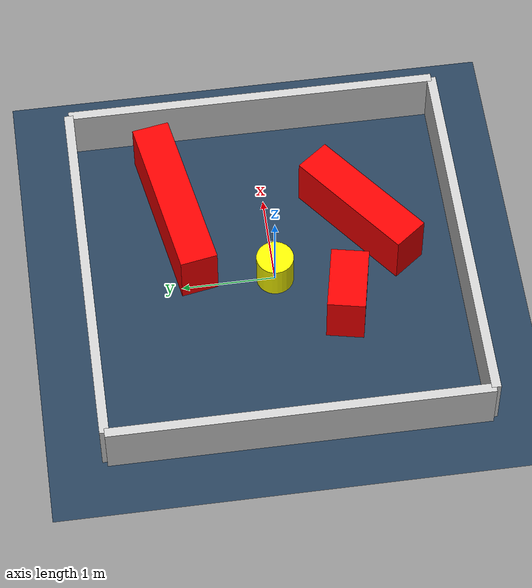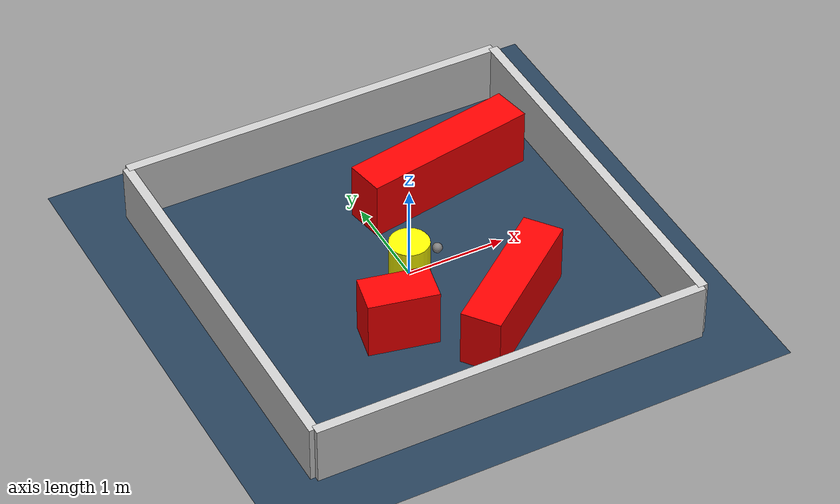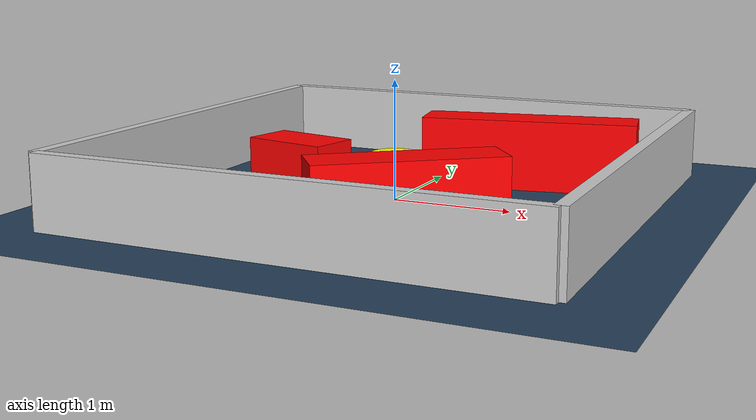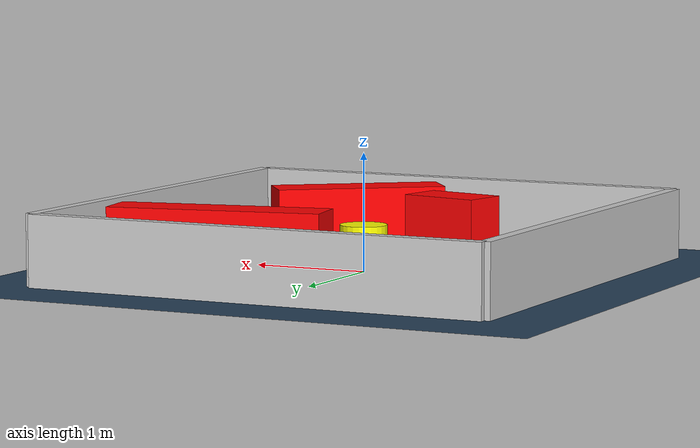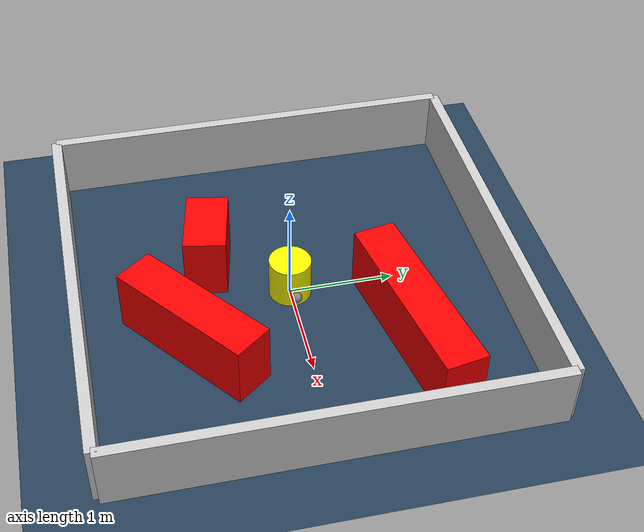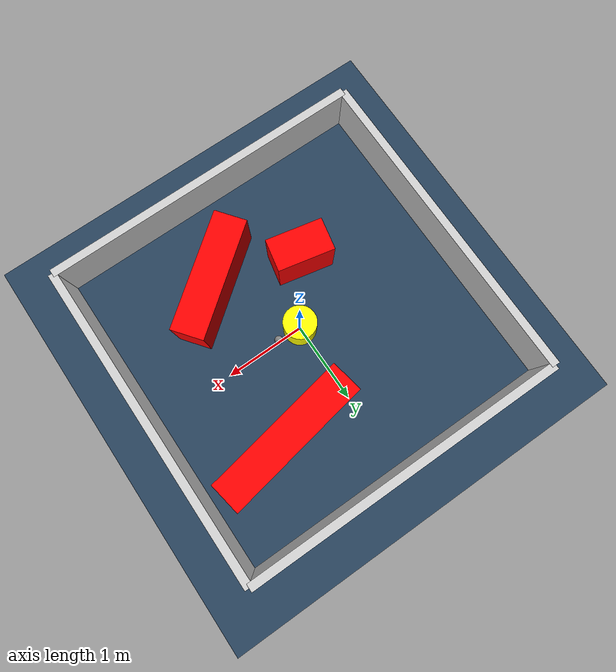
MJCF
<?xml version="1.0" ?>
<mujoco model="generated_environment">
  <option timestep="0.01" integrator="RK4" cone="elliptic"/>
  <default>
    <geom density="1"/>
  </default>
  <asset>
    <texture builtin="gradient" height="3072" rgb1="0.3 0.5 0.7" rgb2="0 0 0" type="skybox" width="512"/>
    <texture builtin="checker" height="300" mark="edge" markrgb="0.8 0.8 0.8" name="groundplane" rgb1="0.2 0.3 0.4" rgb2="0.1 0.2 0.3" type="2d" width="300"/>
    <material name="groundplane" reflectance="0.2" texrepeat="5 5" texture="groundplane" texuniform="true"/>
    <material name="robot" rgba="0.0 1.0 0.0 1"/>
  </asset>
  <worldbody>
    <light dir="0 0 -1" directional="true" pos="0 0 1.5"/>
    <geom condim="4" friction="1.0 0.005 0.001" material="groundplane" name="floor" size="0 0 0.05" type="plane"/>
    <body name="walls">
      <geom name="wall_1" condim="4" pos="-2.0 0.0 0.3" rgba="0.800000011920929 0.800000011920929 0.800000011920929 1.0" size="0.05 2.0 0.3" type="box"/>
      <geom name="wall_2" condim="4" pos="2.0 0.0 0.3" rgba="0.800000011920929 0.800000011920929 0.800000011920929 1.0" size="0.05 2.0 0.3" type="box"/>
      <geom name="wall_3" condim="4" pos="0.0 -2.0 0.3" rgba="0.800000011920929 0.800000011920929 0.800000011920929 1.0" size="2.0 0.05 0.3" type="box"/>
      <geom name="wall_4" condim="4" pos="0.0 2.0 0.3" rgba="0.800000011920929 0.800000011920929 0.800000011920929 1.0" size="2.0 0.05 0.3" type="box"/>
    </body>
    <body name="robot">
      <joint name="joint_x" type="slide" pos="0 0 0" axis="1 0 0"/>
      <joint name="joint_y" type="slide" pos="0 0 0" axis="0 1 0"/>
      <geom name="robot" type="sphere" pos="0.3 0.0 0.2" size="0.05" mass="5." friction="1.0 0.005 0.0001" condim="4" rgba="0.5 0.5 0.5 1.0"/>
      <site name="sensor_ball"/>
    </body>
    <body name="obstacle_movable_1">
      <geom name="obstacle_movable_1" condim="4" pos="0.0 0.0 0.2" euler="0 0 0.0" friction="1.0 0.005 0.001" rgba="1.0 1.0 0.0 1.0" size="0.2 0.2 0.0" type="cylinder" mass="0.1"/>
      <joint type="free"/>
    </body>
    <body name="obstacle_2_static">
      <geom name="obstacle_2_static" condim="4" pos="-0.48746680325122393 -0.7062039308769763 0.3" euler="0 0 348.18535991720245" friction="1.0 0.005 0.001" rgba="1 0 0 1" size="0.34700109978400545 0.2 0.3" type="box"/>
    </body>
    <body name="obstacle_3_static">
      <geom name="obstacle_3_static" condim="4" pos="0.8375487048420671 0.9741079816921439 0.3" euler="0 0 190.21645297354533" friction="1.0 0.005 0.001" rgba="1 0 0 1" size="0.912813080239266 0.2 0.3" type="box"/>
    </body>
    <body name="obstacle_4_static">
      <geom name="obstacle_4_static" condim="4" pos="0.5500829625184189 -1.000316424210677 0.3" euler="0 0 217.54983773212606" friction="1.0 0.005 0.001" rgba="1 0 0 1" size="0.7331409235979306 0.2 0.3" type="box"/>
    </body>
  </worldbody>
  <actuator>
    <motor name="actuator_x" joint="joint_x" gear="1" ctrlrange="-1 1"/>
    <motor name="actuator_y" joint="joint_y" gear="1" ctrlrange="-1 1"/>
  </actuator>
</mujoco>
